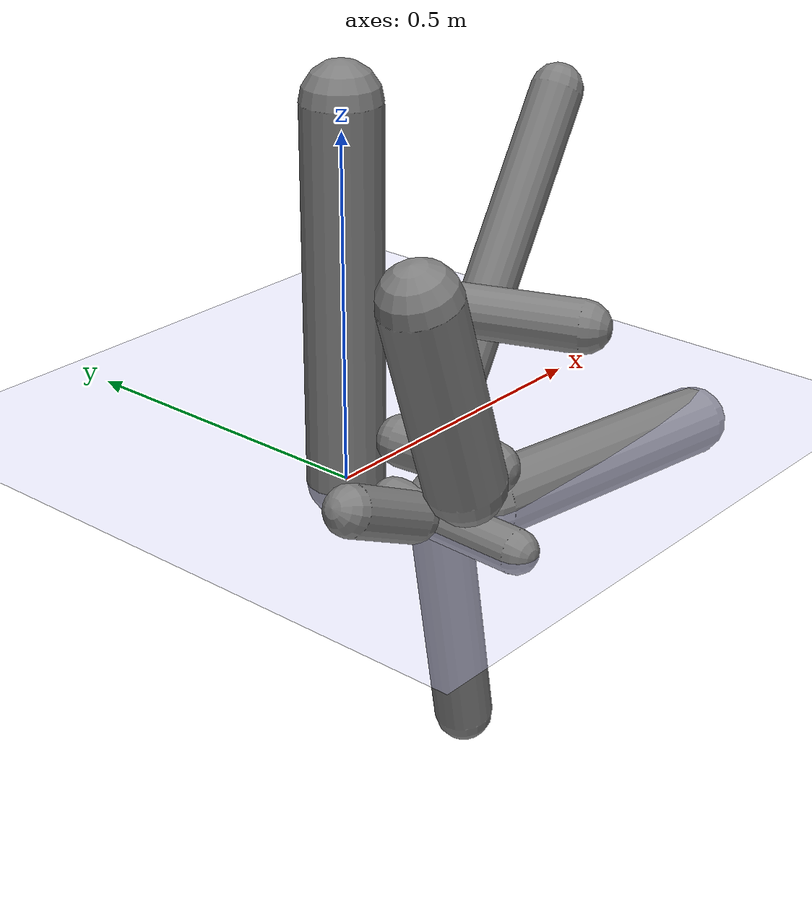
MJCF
<?xml version='1.0' encoding='UTF-8'?>
<mujoco model="robot_model">
  <worldbody>
    <light name="light" pos="0 -3 10" dir="0 0.5 -1" diffuse=".8 .8 .8" specular="0.1 0.1 0.1"/>
    <geom name="floor" type="plane" size="10.0 10.0 0.1" pos="0 0 0" rgba="0.8 0.8 1 1" contype="2" conaffinity="1"/>
    <body name="limb0" pos="0 0 0">
      <geom name="limb0_geom" type="capsule" fromto="0 0 0 0 0 0.5401778296348732" size="0.05590266560028313" density="859.4685100961892" contype="1" conaffinity="2"/>
      <site type="sphere" size="0.01" name="limb0_site0" pos="0.009878548377474271 -0.09675155693681396 0.08533073050605079" quat="0.7071067811865476 0.7034496051453099 0.07182376362254696 0.0"/>
      <site type="sphere" size="0.01" name="limb0_site1" pos="-0.0032085616732058456 -0.09083847348414421 0.00016242612935029403" quat="0.7071067811865476 0.7066660944373666 -0.024960588387271467 0.0"/>
      <site type="sphere" size="0.01" name="limb0_site2" pos="0.03278051202752144 -0.09004951917450563 0.27852046898178295" quat="0.7071067811865476 0.6644507690754128 0.2418784311903242 0.0"/>
      <freejoint name="limb0_root"/>
      <body name="limb1" pos="0.009878548377474271 -0.09675155693681396 0.08533073050605079" quat="0.7071067811865476 0.7034496051453099 0.07182376362254696 0.0">
        <geom name="limb1_geom" type="capsule" fromto="0 0 0 0 0 0.1424889077036172" size="0.037351894641094" density="865.088156168558" contype="1" conaffinity="2"/>
        <site type="sphere" size="0.01" name="limb1_site0" pos="0.024280660745339154 -0.08047164828600721 0.04592228337555497" quat="0.7071067811865476 0.6769623914226275 0.2042594443333214 0.0"/>
        <site type="sphere" size="0.01" name="limb1_site1" pos="0.037128501967287765 0.06857535180328646 0.049950172162057944" quat="0.7071067811865476 -0.6218158844110192 0.33666750050181826 0.0"/>
        <body name="limb2" pos="0.024280660745339154 -0.08047164828600721 0.04592228337555497" quat="0.7071067811865476 0.6769623914226275 0.2042594443333214 0.0">
          <geom name="limb2_geom" type="capsule" fromto="0 0 0 0 0 0.3936817296743239" size="0.04270306752115495" density="1142.1181366406092" contype="1" conaffinity="2"/>
          <joint name="joint_limb1_limb2_0" type="hinge" axis="0 0 1" range="-63.232893646690115 63.232893646690115" damping="5.0"/>
        </body>
        <body name="limb3" pos="0.037128501967287765 0.06857535180328646 0.049950172162057944" quat="0.7071067811865476 -0.6218158844110192 0.33666750050181826 0.0">
          <geom name="limb3_geom" type="capsule" fromto="0 0 0 0 0 0.43983046531169395" size="0.03662954246594703" density="1200.0" contype="1" conaffinity="2"/>
          <joint name="joint_limb1_limb3_0" type="hinge" axis="0 0 1" range="-59.16747994539028 59.16747994539028" damping="5.0"/>
        </body>
        <joint name="joint_limb0_limb1_0" type="hinge" axis="1 0 0" range="-70.74698605445272 70.74698605445272" damping="5.0"/>
      </body>
      <body name="limb4" pos="-0.0032085616732058456 -0.09083847348414421 0.00016242612935029403" quat="0.7071067811865476 0.7066660944373666 -0.024960588387271467 0.0">
        <geom name="limb4_geom" type="capsule" fromto="0 0 0 0 0 0.2170922743569274" size="0.030992456012157308" density="773.3630548460709" contype="1" conaffinity="2"/>
        <site type="sphere" size="0.01" name="limb4_site0" pos="0.08712226299110318 -0.011179266433498458 0.09207024149456387" quat="0.7071067811865476 0.0899959350022646 0.7013563514242015 0.0"/>
        <site type="sphere" size="0.01" name="limb4_site1" pos="-0.02494573128029656 0.08808163134873875 0.15230511562370025" quat="0.7071067811865476 -0.6803480675143211 -0.19268239937661344 0.0"/>
        <site type="sphere" size="0.01" name="limb4_site2" pos="-0.06269112542816652 0.03257171321801038 0.09303263818377377" quat="0.7071067811865476 -0.3260076134473962 -0.6274703466892543 0.0"/>
        <body name="limb5" pos="0.08712226299110318 -0.011179266433498458 0.09207024149456387" quat="0.7071067811865476 0.0899959350022646 0.7013563514242015 0.0">
          <geom name="limb5_geom" type="capsule" fromto="0 0 0 0 0 0.49273132914871753" size="0.05284412353578555" density="1075.0324498949815" contype="1" conaffinity="2"/>
          <joint name="joint_limb4_limb5_0" type="hinge" axis="0 1 0" range="-70.36769792005789 70.36769792005789" damping="5.0"/>
        </body>
        <body name="limb6" pos="-0.02494573128029656 0.08808163134873875 0.15230511562370025" quat="0.7071067811865476 -0.6803480675143211 -0.19268239937661344 0.0">
          <geom name="limb6_geom" type="capsule" fromto="0 0 0 0 0 0.29045882878750123" size="0.05655350670692651" density="1091.0289928776679" contype="1" conaffinity="2"/>
          <joint name="joint_limb4_limb6_0" type="hinge" axis="1 0 0" range="-73.12719681971862 73.12719681971862" damping="5.0"/>
        </body>
        <body name="limb7" pos="-0.06269112542816652 0.03257171321801038 0.09303263818377377" quat="0.7071067811865476 -0.3260076134473962 -0.6274703466892543 0.0">
          <geom name="limb7_geom" type="capsule" fromto="0 0 0 0 0 0.12949640535912238" size="0.035655217052186564" density="780.9335705735965" contype="1" conaffinity="2"/>
          <joint name="joint_limb4_limb7_0" type="hinge" axis="1 0 0" range="-32.269066017607344 32.269066017607344" damping="5.0"/>
        </body>
        <joint name="joint_limb0_limb4_0" type="hinge" axis="1 0 0" range="-33.893167912019756 33.893167912019756" damping="5.0"/>
      </body>
      <body name="limb8" pos="0.03278051202752144 -0.09004951917450563 0.27852046898178295" quat="0.7071067811865476 0.6644507690754128 0.2418784311903242 0.0">
        <geom name="limb8_geom" type="capsule" fromto="0 0 0 0 0 0.2373272582540117" size="0.035927798618284316" density="843.5356408267967" contype="1" conaffinity="2"/>
        <joint name="joint_limb0_limb8_0" type="hinge" axis="1 0 0" range="-59.098013012698004 59.098013012698004" damping="5.0"/>
      </body>
    </body>
  </worldbody>
  <actuator>
    <position name="position_actuator_joint_limb0_limb1_0" joint="joint_limb0_limb1_0" gear="1.6844985986898056" inheritrange="1" forcerange="-30.746543389574875 30.746543389574875" forcelimited="true" kp="100.0"/>
    <position name="position_actuator_joint_limb1_limb2_0" joint="joint_limb1_limb2_0" gear="1.0650201992485777" inheritrange="1" forcerange="-14.742077785167293 14.742077785167293" forcelimited="true" kp="100.0"/>
    <position name="position_actuator_joint_limb1_limb3_0" joint="joint_limb1_limb3_0" gear="1.6295749847985146" inheritrange="1" forcerange="-12.358895510108084 12.358895510108084" forcelimited="true" kp="100.0"/>
    <position name="position_actuator_joint_limb0_limb4_0" joint="joint_limb0_limb4_0" gear="1.5556786539001968" inheritrange="1" forcerange="-52.387535574851185 52.387535574851185" forcelimited="true" kp="100.0"/>
    <position name="position_actuator_joint_limb4_limb5_0" joint="joint_limb4_limb5_0" gear="1.6301698078758577" inheritrange="1" forcerange="-26.557666178162428 26.557666178162428" forcelimited="true" kp="100.0"/>
    <position name="position_actuator_joint_limb4_limb6_0" joint="joint_limb4_limb6_0" gear="0.7516662685839325" inheritrange="1" forcerange="-20.05369185431183 20.05369185431183" forcelimited="true" kp="100.0"/>
    <position name="position_actuator_joint_limb4_limb7_0" joint="joint_limb4_limb7_0" gear="1.900653364935264" inheritrange="1" forcerange="-2.76085394119477 2.76085394119477" forcelimited="true" kp="100.0"/>
    <position name="position_actuator_joint_limb0_limb8_0" joint="joint_limb0_limb8_0" gear="0.5517284405398799" inheritrange="1" forcerange="-4.8784430386840025 4.8784430386840025" forcelimited="true" kp="100.0"/>
  </actuator>
  <contact>
    <pair geom1="limb0_geom" geom2="limb1_geom"/>
    <pair geom1="limb1_geom" geom2="limb2_geom"/>
    <pair geom1="limb1_geom" geom2="limb3_geom"/>
    <pair geom1="limb0_geom" geom2="limb4_geom"/>
    <pair geom1="limb4_geom" geom2="limb5_geom"/>
    <pair geom1="limb4_geom" geom2="limb6_geom"/>
    <pair geom1="limb4_geom" geom2="limb7_geom"/>
    <pair geom1="limb0_geom" geom2="limb8_geom"/>
  </contact>
</mujoco>
